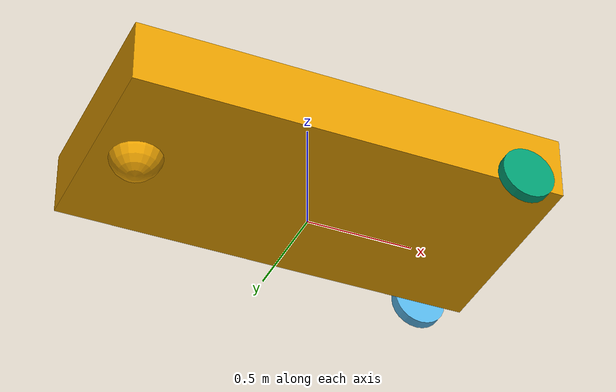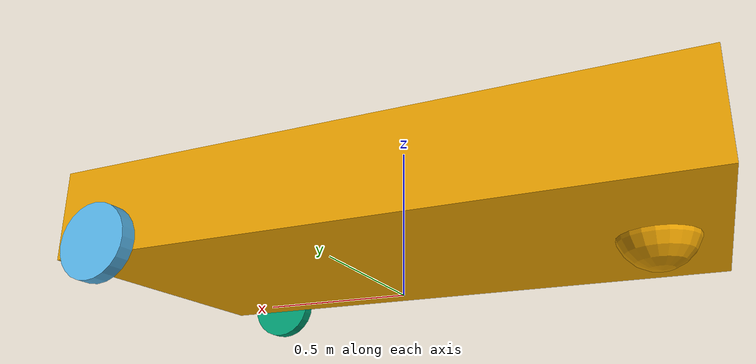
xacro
<?xml version="1.0" ?>
<robot name="robot_base">
  <joint name="robot_base__left_wheel_hinge" type="revolute">
    <parent link="robot_base__chassis"/>
    <child link="robot_base__left_wheel"/>
    <origin xyz="0.79999 0.505   0.12499" rpy="1.26000e-03 1.57070e+00 1.57196e+00"/>
    <axis xyz="9.e-05 9.e-05 1.e+00"/>
    <limit lower="-1e+16" upper="1e+16" effort="-1.0" velocity="-1.0"/>
  </joint>
  <joint name="robot_base__right_wheel_hinge" type="revolute">
    <parent link="robot_base__chassis"/>
    <child link="robot_base__right_wheel"/>
    <origin xyz="0.8   -0.505  0.125" rpy="1.26000e-03 1.57070e+00 1.57196e+00"/>
    <axis xyz="9.e-05 9.e-05 1.e+00"/>
    <limit lower="-1e+16" upper="1e+16" effort="-1.0" velocity="-1.0"/>
  </joint>
  <link name="robot_base__chassis">
    <inertial>
      <mass value="20"/>
      <origin xyz="-0.1  0  -0.1" rpy="0 0 0"/>
      <inertia ixx="0.5" ixy="0" ixz="0" iyy="1" iyz="0" izz="0.1"/>
    </inertial>
    <collision name="robot_base__caster_collision">
      <origin xyz="-0.8    0     0.125" rpy="0 0 0"/>
      <geometry>
        <sphere radius="0.125"/>
      </geometry>
    </collision>
    <collision name="robot_base__collision">
      <origin xyz="0   0   0.25" rpy="0 0 0"/>
      <geometry>
        <box size="2 1 0.3"/>
      </geometry>
    </collision>
    <visual name="robot_base__visual">
      <origin xyz="0   0   0.25" rpy="0 0 0"/>
      <geometry>
        <box size="2 1 0.3"/>
      </geometry>
    </visual>
    <visual name="robot_base__caster_visual">
      <origin xyz="-0.8    0     0.125" rpy="0 0 0"/>
      <geometry>
        <sphere radius="0.125"/>
      </geometry>
    </visual>
  </link>
  <link name="robot_base__left_wheel">
    <inertial>
      <mass value="1"/>
      <origin xyz="0 0 0" rpy="0 0 0"/>
      <inertia ixx="1" ixy="0" ixz="0" iyy="1" iyz="0" izz="1"/>
    </inertial>
    <collision name="robot_base__collision">
      <origin xyz="0   0   0.03" rpy="0 0 0"/>
      <geometry>
        <cylinder radius="0.125" length="0.05"/>
      </geometry>
    </collision>
    <visual name="robot_base__visual">
      <origin xyz="0   0   0.03" rpy="0 0 0"/>
      <geometry>
        <cylinder radius="0.125" length="0.05"/>
      </geometry>
    </visual>
  </link>
  <link name="robot_base__right_wheel">
    <inertial>
      <mass value="1"/>
      <origin xyz="0 0 0" rpy="0 0 0"/>
      <inertia ixx="1" ixy="0" ixz="0" iyy="1" iyz="0" izz="1"/>
    </inertial>
    <collision name="robot_base__collision">
      <origin xyz="0    0   -0.03" rpy="0 0 0"/>
      <geometry>
        <cylinder radius="0.125" length="0.05"/>
      </geometry>
    </collision>
    <visual name="robot_base__visual">
      <origin xyz="0    0   -0.03" rpy="0 0 0"/>
      <geometry>
        <cylinder radius="0.125" length="0.05"/>
      </geometry>
    </visual>
  </link>
</robot>
